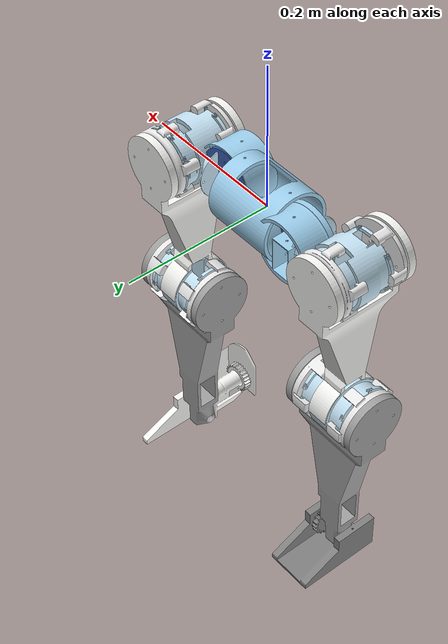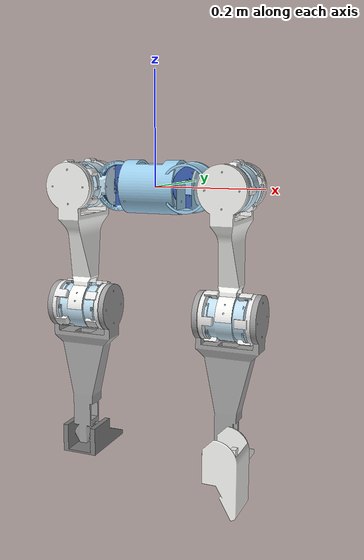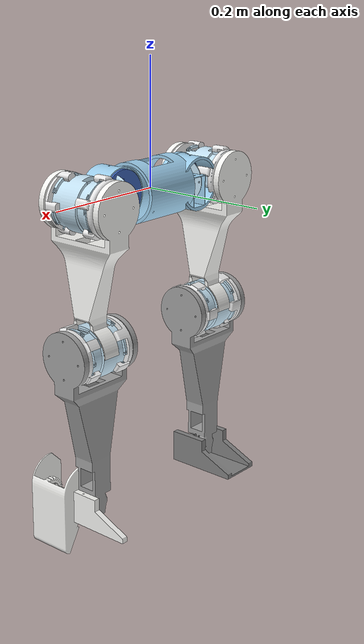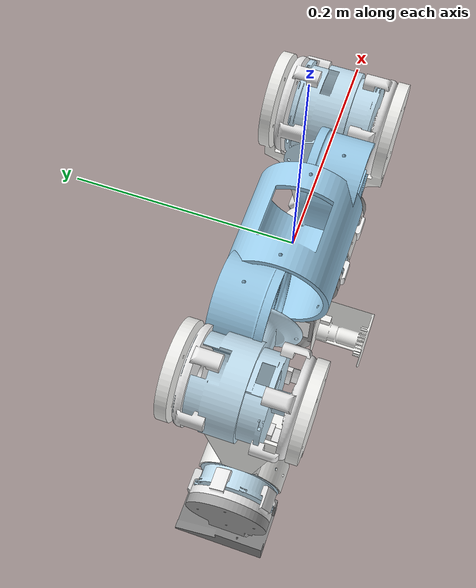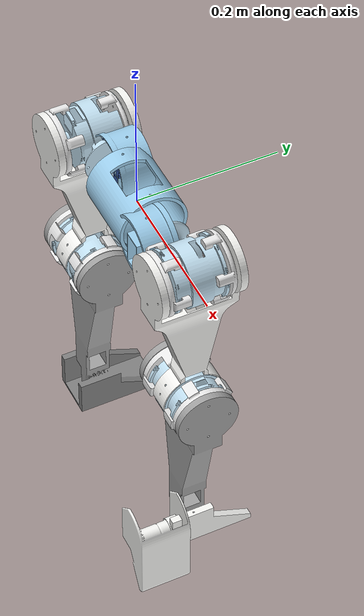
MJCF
<mujoco model="robot">

    <compiler angle="radian"/>

    <asset>
        <mesh
            name="Calf_link"
            content_type="model/stl"
            file="meshes/Calf_link.stl"/>

        <mesh
            name="Hip_Pitch_giver"
            content_type="model/stl"
            file="meshes/Hip_Pitch_giver.stl"/>

        <mesh
            name="Hip_Pitch_motor_holder"
            content_type="model/stl"
            file="meshes/Hip_Pitch_motor_holder.stl"/>

        <mesh
            name="Hip_Roll_giver"
            content_type="model/stl"
            file="meshes/Hip_Roll_giver.stl"/>

        <mesh
            name="Hip_Roll_Motor_Holder"
            content_type="model/stl"
            file="meshes/Hip_Roll_Motor_Holder.stl"/>

        <mesh
            name="Hip_Support_Roll_Giver"
            content_type="model/stl"
            file="meshes/Hip_Support_Roll_Giver.stl"/>

        <mesh
            name="Hips_connector"
            content_type="model/stl"
            file="meshes/Hips_connector.stl"/>

        <mesh
            name="Knee_Pitch_giver"
            content_type="model/stl"
            file="meshes/Knee_Pitch_giver.stl"/>

        <mesh
            name="Knee_Pitch_motor_holder"
            content_type="model/stl"
            file="meshes/Knee_Pitch_motor_holder.stl"/>

        <mesh
            name="Left_foot"
            content_type="model/stl"
            file="meshes/Left_foot.stl"/>

        <mesh
            name="Right_foot"
            content_type="model/stl"
            file="meshes/Right_foot.stl"/>

        <mesh
            name="Right_foot_cover"
            content_type="model/stl"
            file="meshes/Right_foot_cover.stl"/>

        <mesh
            name="Support_knee_pitch_giver"
            content_type="model/stl"
            file="meshes/Support_knee_pitch_giver.stl"/>

        <mesh
            name="Thigh_link"
            content_type="model/stl"
            file="meshes/Thigh_link.stl"/>
    </asset>

    <worldbody>

        <!-- Hips connector -->
        <geom
            quat="9.38184e-07 -0.707105 0.707108 -9.38187e-07"
            type="mesh"
            rgba="0.615686 0.811765 0.929412 1"
            mesh="Hips_connector"/>

        <!-- Left hip pitch motor holder -->
        <geom
            pos="-0.0700001 3.36733e-07 -0.0120077"
            quat="-0.707109 -2.49001e-12 2.49001e-12 -0.707105"
            type="mesh"
            rgba="0.615686 0.811765 0.929412 1"
            mesh="Hip_Pitch_motor_holder"/>

        <!-- Right hip pitch motor holder -->
        <geom
            pos="0.0699999 -2.57124e-07 -0.0120075"
            quat="0.707105 0 0 -0.707108"
            type="mesh"
            rgba="0.615686 0.811765 0.929412 1"
            mesh="Hip_Pitch_motor_holder"/>

        <!-- LEFT LEG -->

        <body
            name="hip_pitch_giver"
            pos="-0.0751501 3.69316e-07 4.72939e-05"
            quat="9.38179e-07 0.707104 -0.70711 -9.38192e-07">

            <inertial
                pos="0.000796802 0.0345073 0.000318599"
                quat="0.702532 0.711449 -0.00678702 -0.0155913"
                mass="0.201537"
                diaginertia="0.000360854 0.000342293 0.000177757"/>

            <joint
                name="left_hip_pitch"
                pos="0 0 0"
                axis="0 -1 0"/>

            <geom
                pos="0 -0.0068 -0.012055"
                quat="1 0 0 0"
                type="mesh"
                rgba="0.231373 0.380392 0.705882 1"
                mesh="Hip_Pitch_giver"/>

            <geom
                pos="0 -0.0068 -0.012055"
                quat="1 0 0 0"
                type="mesh"
                rgba="0.768627 0.886275 0.952941 1"
                mesh="Hip_Roll_Motor_Holder"/>

            <body
                name="hip_roll_giver"
                pos="0.04175 0.0655 0"
                quat="0.707105 -0.707108 0 0">

                <inertial
                    pos="-0.0370822 -0.0650554 0.00102313"
                    quat="0.505963 0.493726 -0.494792 0.505389"
                    mass="0.529068"
                    diaginertia="0.00486431 0.00418838 0.00106766"/>

                <joint
                    name="left_hip_roll"
                    pos="0 0 0"
                    axis="-1 0 0"/>

                <geom
                    pos="-0.032 -0.0723 -0.012055"
                    type="mesh"
                    rgba="0.917647 0.917647 0.917647 1"
                    mesh="Hip_Roll_giver"/>

                <geom
                    pos="-0.031 -0.0120547 0.0723"
                    quat="0.707105 -0.707108 0 0"
                    type="mesh"
                    rgba="0.917647 0.917647 0.917647 1"
                    mesh="Hip_Support_Roll_Giver"/>

                <geom
                    pos="-0.057 -0.478422 -0.120829"
                    quat="0.707105 -0.707108 0 0"
                    type="mesh"
                    rgba="0.964706 0.964706 0.952941 1"
                    mesh="Thigh_link"/>

                <geom
                    pos="-0.109192 -0.234943 0.00384467"
                    quat="0.499998 -0.5 -0.500002 -0.5"
                    type="mesh"
                    rgba="0.768627 0.886275 0.952941 1"
                    mesh="Knee_Pitch_motor_holder"/>

                <body
                    name="knee_pitch_giver_1"
                    pos="-0.0368919 -0.222888 0.0355949"
                    quat="0.707105 0 -0.707108 2.59735e-06">

                    <inertial
                        pos="-0.0356681 -0.0606831 -2.72981e-05"
                        quat="0.496405 0.503578 -0.496727 0.503242"
                        mass="0.421419"
                        diaginertia="0.003641 0.00316604 0.000782131"/>

                    <joint
                        name="left_knee_pitch"
                        pos="0 0 0"
                        axis="-1 0 0"/>

                    <geom
                        pos="-0.032 -0.0723 -0.012055"
                        type="mesh"
                        rgba="0.917647 0.917647 0.917647 1"
                        mesh="Knee_Pitch_giver"/>

                    <geom
                        pos="-0.094 -0.045 0"
                        quat="1 0 0 0"
                        type="mesh"
                        rgba="0.627451 0.627451 0.627451 1"
                        mesh="Calf_link"/>

                    <geom
                        pos="-0.031 -0.0723 -0.012055"
                        quat="1 0 0 0"
                        type="mesh"
                        rgba="0.917647 0.917647 0.917647 1"
                        mesh="Support_knee_pitch_giver"/>

                    <body
                        name="left_foot"
                        pos="-0.0272431 -0.254819 -0.000643039"
                        quat="0.707105 0 0.707108 0">

                        <inertial
                            pos="-0.0119462 -0.00954337 -0.0247906"
                            quat="0.265742 0.576294 0.46089 0.62036"
                            mass="0.104954"
                            diaginertia="0.000124548 0.000109246 4.83541e-05"/>

                        <joint
                            name="left_ankle_pitch"
                            pos="0 0 0"
                            axis="0 0 -1"/>

                        <geom
                            pos="-0.0211332 0.000162697 -0.129191"
                            quat="1 0 0 0"
                            type="mesh"
                            mesh="Left_foot"/>

                    </body>

                </body>

            </body>

        </body>

        <!-- RIGHT LEG -->

        <body
            name="hip_pitch_giver_1"
            pos="0.0751499 -2.76041e-07 4.75061e-05"
            quat="0.707105 0 0 -0.707108">

            <inertial
                pos="0.000796802 0.0345073 0.000318599"
                quat="0.702532 0.711449 -0.00678702 -0.0155913"
                mass="0.201537"
                diaginertia="0.000360854 0.000342293 0.000177757"/>

            <joint
                name="right_hip_pitch"
                pos="0 0 0"
                axis="0 1 0"/>

            <geom
                pos="0 -0.0068 -0.012055"
                quat="1 0 0 0"
                type="mesh"
                rgba="0.231373 0.380392 0.705882 1"
                mesh="Hip_Pitch_giver"/>

            <geom
                pos="0 -0.0068 -0.012055"
                quat="1 0 0 0"
                type="mesh"
                rgba="0.768627 0.886275 0.952941 1"
                mesh="Hip_Roll_Motor_Holder"/>

            <body
                name="hip_roll_giver_1"
                pos="0.03175 0.0655 0"
                quat="0.707105 -0.707108 0 0">

                <inertial
                    pos="-0.0370822 0.0652798 0.00134973"
                    quat="0.49215 0.507482 -0.506939 0.493217"
                    mass="0.529068"
                    diaginertia="0.00490301 0.00422707 0.00106764"/>

                <joint
                    name="right_hip_roll"
                    pos="0 0 0"
                    axis="1 0 0"/>

                <geom
                    pos="-0.032 -0.0723 -0.012055"
                    type="mesh"
                    rgba="0.917647 0.917647 0.917647 1"
                    mesh="Hip_Roll_giver"/>

                <geom
                    pos="-0.031 0.0120553 -0.0723"
                    quat="0.707105 0.707108 0 0"
                    type="mesh"
                    rgba="0.917647 0.917647 0.917647 1"
                    mesh="Hip_Support_Roll_Giver"/>

                <geom
                    pos="-0.057 0.478422 0.120833"
                    quat="0.707105 0.707108 0 0"
                    type="mesh"
                    rgba="0.964706 0.964706 0.952941 1"
                    mesh="Thigh_link"/>

                <geom
                    pos="-0.109192 0.210833 0.00515666"
                    quat="0.500001 -0.499997 -0.500001 -0.500001"
                    type="mesh"
                    rgba="0.768627 0.886275 0.952941 1"
                    mesh="Knee_Pitch_motor_holder"/>

                <body
                    name="knee_pitch_giver"
                    pos="-0.0368919 0.222888 0.036907"
                    quat="9.38184e-07 -0.707105 1.65917e-06 -0.707108">

                    <inertial
                        pos="-0.036775 -0.060683 2.74591e-05"
                        quat="0.505059 0.494896 -0.504725 0.495223"
                        mass="0.421419"
                        diaginertia="0.00364125 0.00316651 0.000781916"/>

                    <joint
                        name="right_knee_pitch"
                        pos="0 0 0"
                        axis="1 0 0"/>

                    <geom
                        pos="-0.032 -0.0723 -0.012055"
                        type="mesh"
                        rgba="0.917647 0.917647 0.917647 1"
                        mesh="Knee_Pitch_giver"/>

                    <geom
                        pos="0.0209999 -0.045 1.19412e-07"
                        quat="1.75854e-12 -1.32679e-06 -1 1.32679e-06"
                        type="mesh"
                        rgba="0.627451 0.627451 0.627451 1"
                        mesh="Calf_link"/>

                    <geom
                        pos="-0.031 -0.0723 -0.012055"
                        quat="1 0 0 0"
                        type="mesh"
                        rgba="0.917647 0.917647 0.917647 1"
                        mesh="Support_knee_pitch_giver"/>

                    <body
                        name="right_foot"
                        pos="-0.0377576 -0.254819 0.000643715"
                        quat="0.707108 -1.87637e-06 -0.707105 -3.42681e-12">

                        <inertial
                            pos="-0.0117973 -0.00843656 0.00930592"
                            quat="0.456937 0.406112 0.537677 0.580676"
                            mass="0.158521"
                            diaginertia="0.000245894 0.000172804 0.000134017"/>

                        <joint
                            name="right_ankle_pitch"
                            pos="0 0 0"
                            axis="0 0 -1"/>

                        <geom
                            pos="-0.0211332 0.000162697 -0.0461908"
                            quat="1 0 0 0"
                            type="mesh"
                            rgba="0.964706 0.964706 0.952941 1"
                            mesh="Right_foot"/>

                        <geom
                            pos="-0.0211332 0.000162697 -0.181191"
                            quat="1 0 0 0"
                            type="mesh"
                            rgba="0.964706 0.964706 0.952941 1"
                            mesh="Right_foot_cover"/>

                    </body>

                </body>

            </body>

        </body>

    </worldbody>

</mujoco>
